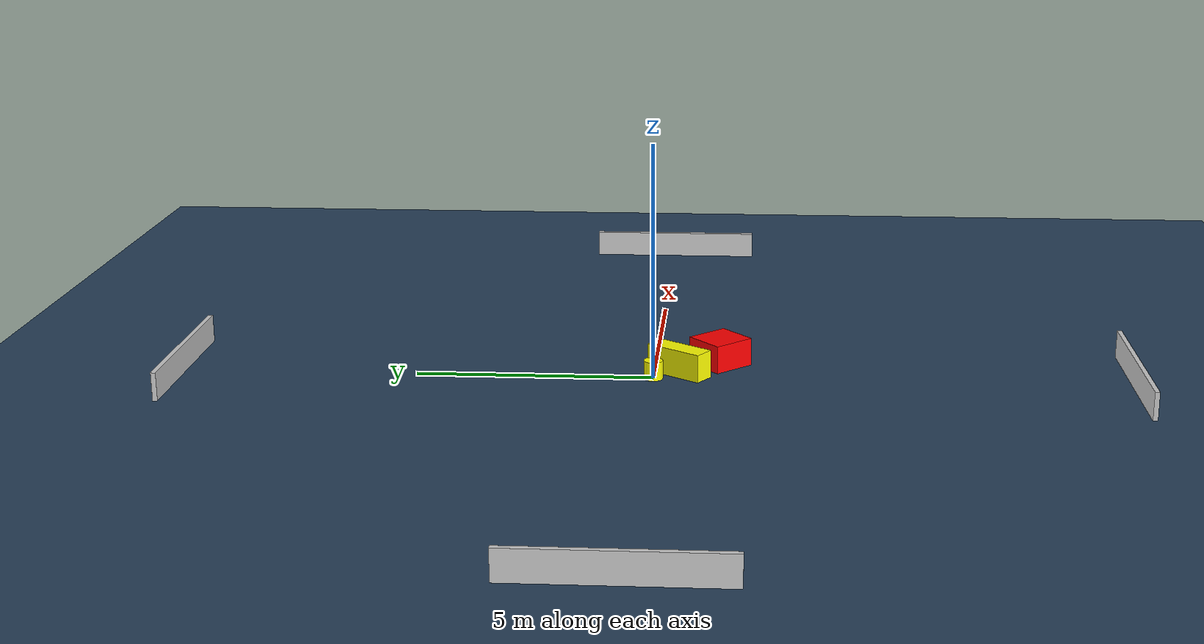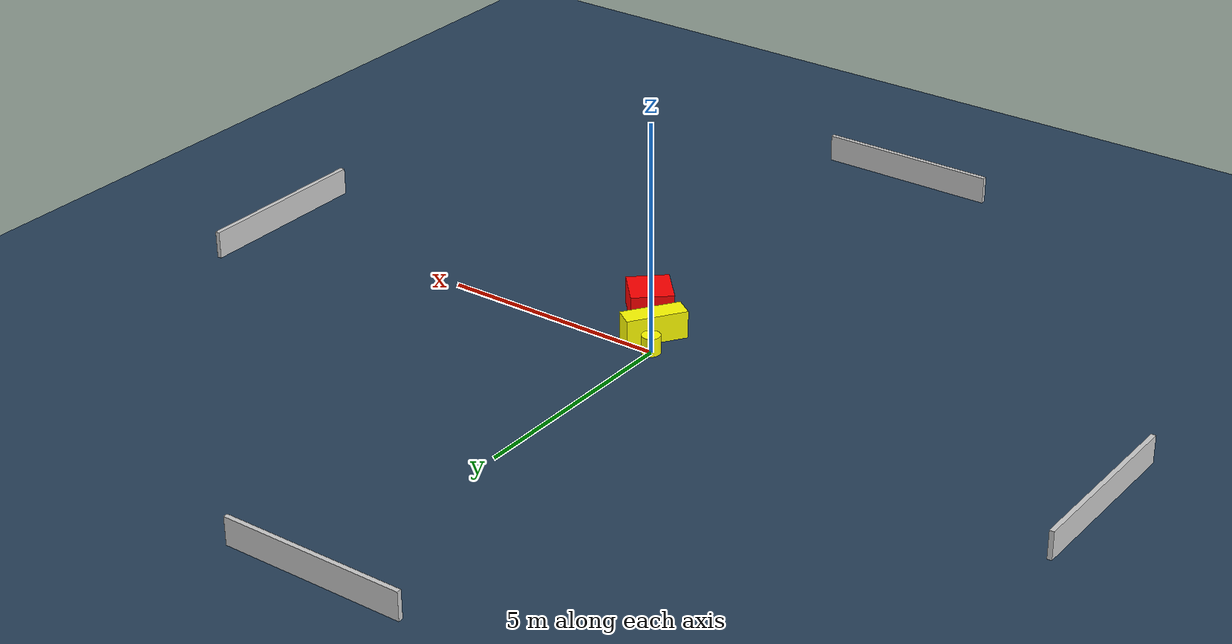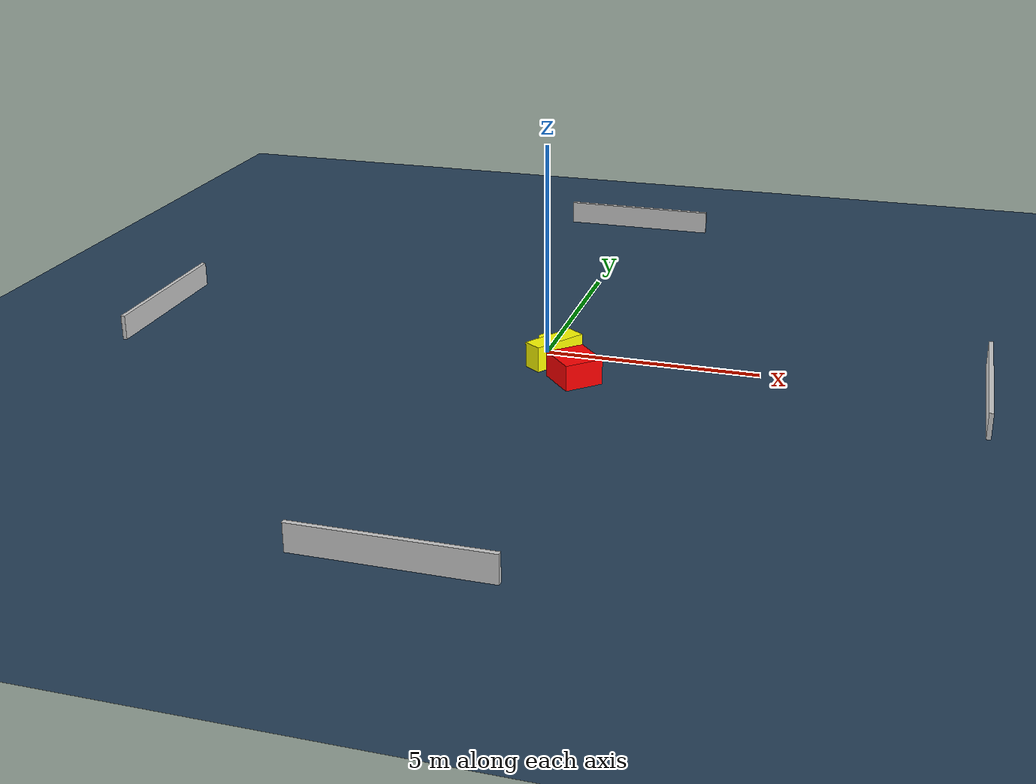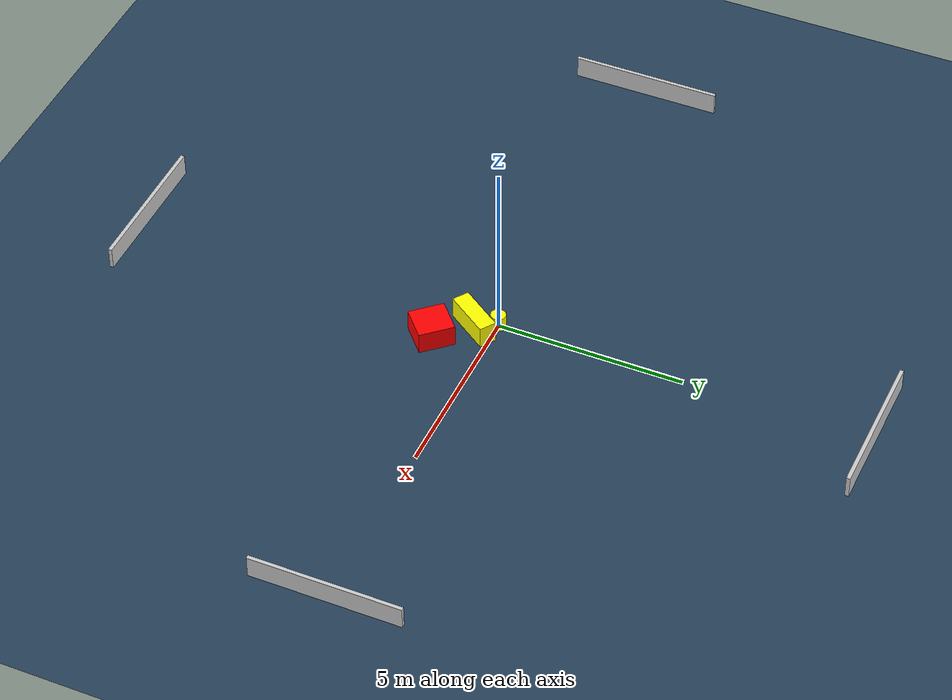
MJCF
<?xml version="1.0" ?>
<mujoco model="generated_environment">
  <option timestep="0.01" integrator="RK4" cone="elliptic"/>
  <default>
    <geom density="1"/>
  </default>
  <asset>
    <texture builtin="gradient" height="3072" name="skybox" rgb1="0.3 0.5 0.7" rgb2="0 0 0" type="skybox" width="512"/>
    <texture builtin="checker" height="300" name="groundplane" rgb1="0.2 0.3 0.4" rgb2="0.1 0.2 0.3" type="2d" width="300"/>
    <material name="groundplane" reflectance="0.2" texrepeat="5 5" texture="groundplane"/>
  </asset>
  <worldbody>
    <light dir="0 0 -1" directional="true" pos="0 0 1.5"/>
    <geom condim="3" friction="0.5 0.005 0.001" material="groundplane" name="floor" pos="0 0 0" size="0 0 0.05" type="plane"/>
    <body name="walls">
      <geom name="wall_1" condim="4" pos="-10.0 0.0 0.3" rgba="0.800000011920929 0.800000011920929 0.800000011920929 1.0" size="0.05 2.0 0.3" type="box"/>
      <geom name="wall_2" condim="4" pos="10.0 0.0 0.3" rgba="0.800000011920929 0.800000011920929 0.800000011920929 1.0" size="0.05 2.0 0.3" type="box"/>
      <geom name="wall_3" condim="4" pos="0.0 -10.0 0.3" rgba="0.800000011920929 0.800000011920929 0.800000011920929 1.0" size="2.0 0.05 0.3" type="box"/>
      <geom name="wall_4" condim="4" pos="0.0 10.0 0.3" rgba="0.800000011920929 0.800000011920929 0.800000011920929 1.0" size="2.0 0.05 0.3" type="box"/>
    </body>
    <body name="robot">
      <joint name="joint_x" type="slide" pos="0 0 0" axis="1 0 0"/>
      <joint name="joint_y" type="slide" pos="0 0 0" axis="0 1 0"/>
      <geom name="robot" type="cylinder" pos="0.0 0.0 0.2" size="0.2 0.2 0.0" mass="5.0" friction="1.0 0.005 0.0001" condim="4" rgba="1.0 1.0 0.0 1.0"/>
    </body>
    <body name="obstacle_1_movable">
      <geom name="obstacle_1_movable" condim="4" pos="0.3136285807970934 -0.5288107380822153 0.3" euler="0 0 325.5043761909579" friction="0.0 0.005 0.001" rgba="1.0 1.0 0.0 1.0" size="0.22872832856167982 0.6574728675440054 0.3" type="box" mass="0.1"/>
      <joint type="free"/>
    </body>
    <body name="obstacle_2_static">
      <geom name="obstacle_2_static" condim="4" pos="1.0219374562193586 -1.3851813285799348 0.3" euler="0 0 42.19952112013648" friction="0.0 0.005 0.001" rgba="1.0 0.0 0.0 1.0" size="0.45517045583556326 0.47852061966396026 0.3" type="box"/>
    </body>
  </worldbody>
  <actuator>
    <motor name="actuator_x" joint="joint_x" gear="1" ctrlrange="-1 1"/>
    <motor name="actuator_y" joint="joint_y" gear="1" ctrlrange="-1 1"/>
  </actuator>
</mujoco>
